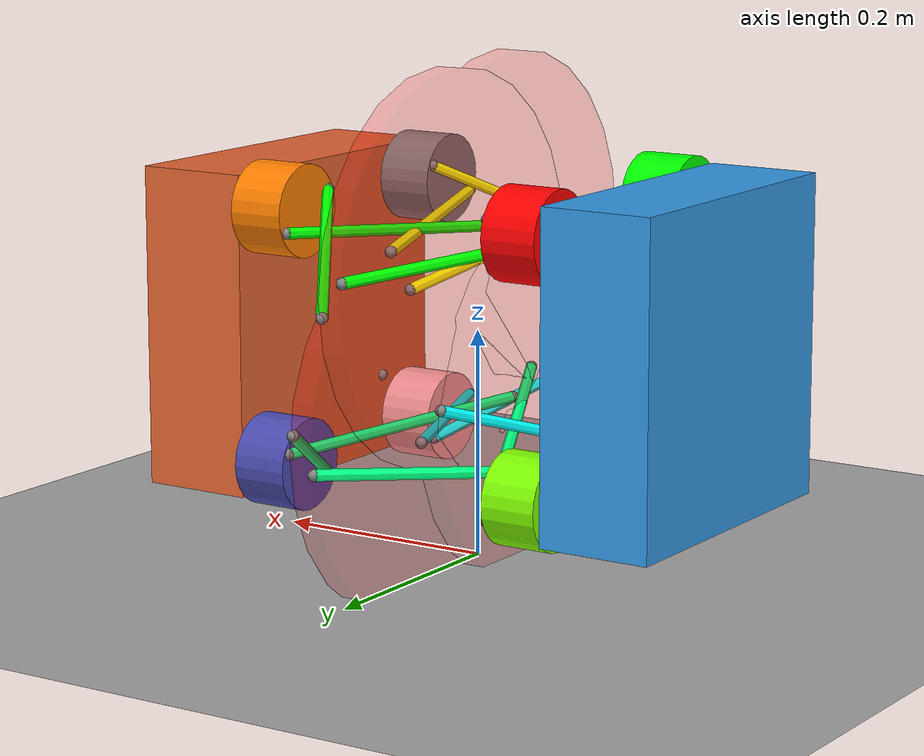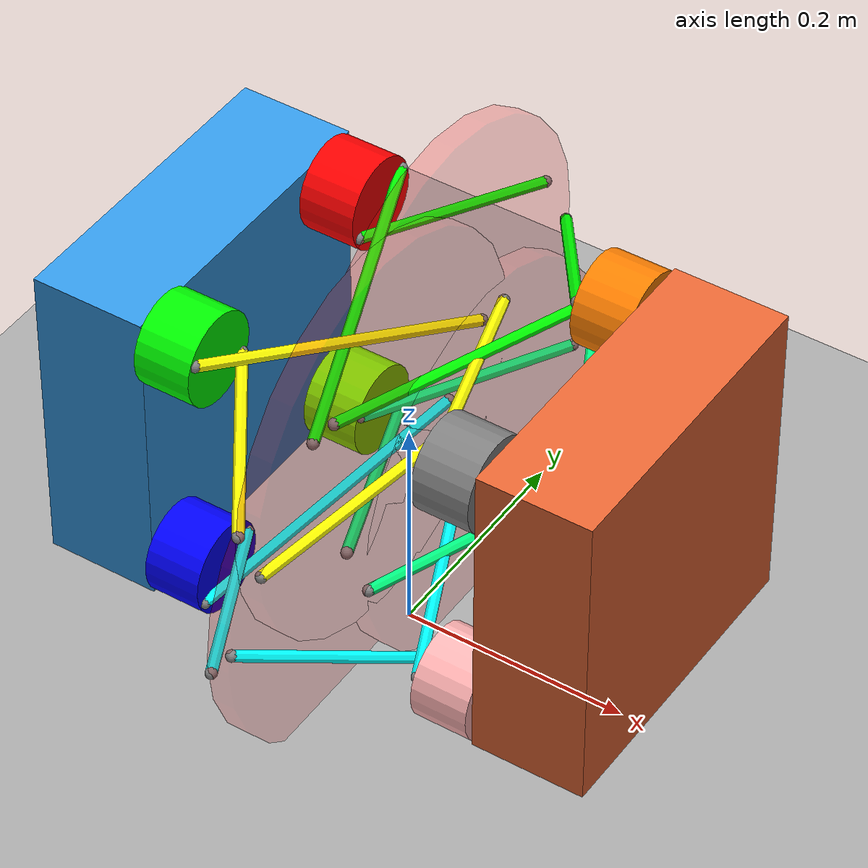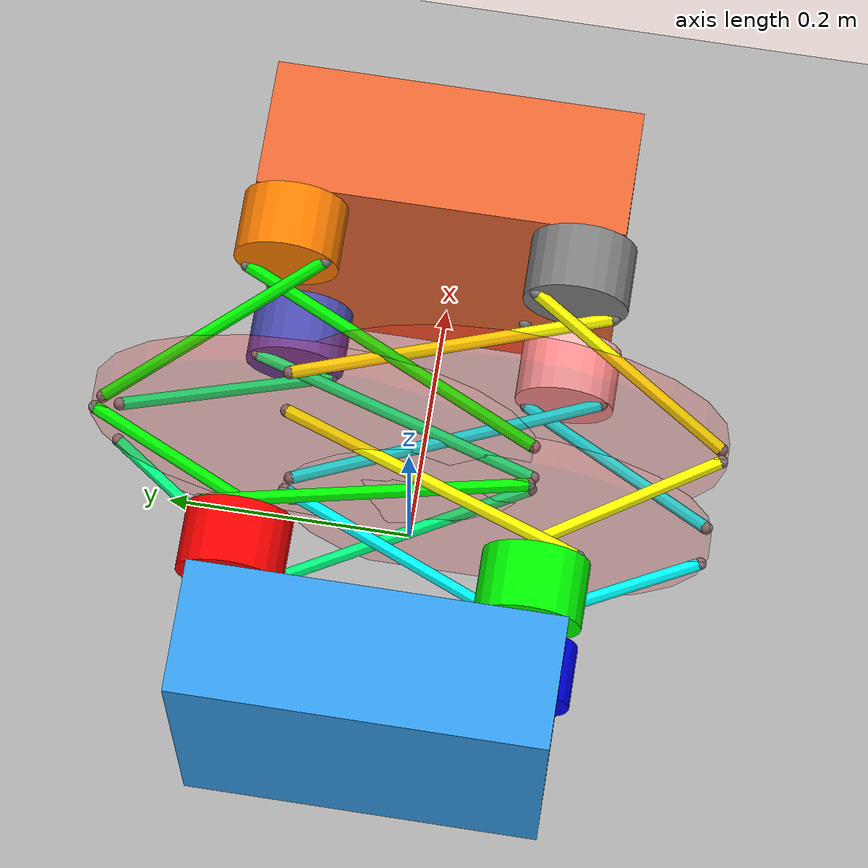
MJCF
<mujoco model="17mm">
  <option timestep="0.001"/>
  <size njmax="200" nconmax="100"/>

  <asset>
    <texture name="grid" type="2d" builtin="checker" width="300" height="300"
             rgb1="0.8 0.8 0.8" rgb2="0.5 0.5 0.5" mark="edge" markrgb="0.2 0.2 0.2"/>
    <material name="gridmat" texture="grid" texrepeat="5 5" reflectance="0.1"/>
  </asset>

  <worldbody>
    <geom name="floor" type="plane" size="5 5 0.1" material="gridmat" friction="0.2 0.02 0.01" contype="1" conaffinity="1"/>

    <!-- Block A -->
    <body name="block_a" pos="-0.2 0 0.2">
      <freejoint/>
      <geom type="box" size="0.05 0.14 0.14" density="480" friction="0.2 0.02 0.01" rgba="0.2 0.6 0.9 1"/>

      <!-- Cable 1 A -->
      <body name="spring_1a" pos="0.05 0.11 0.11">
        <joint name="spring1a_hinge" type="hinge" axis="1 0 0" limited="true" range="0 3.14"/>
        <geom type="cylinder" fromto="0 0 0 0.05 0 0" size="0.04" density="150" rgba="1 0 0 1"/>

        <site name="siteM1a1" pos="0.05 0.03 0.015"/>
        <site name="siteM1a2" pos="0.05 -0.03 -0.015"/>
      </body>

      <!-- Cable 1 B -->
      <body name="spring_1b" pos="0.175 0.07 0.065">
        <geom name="spring_1b_collision" type="cylinder" fromto="0 0 0 0.02 0 0" size="0.17" density="150" rgba="1 0 0 0.1" contype="4" conaffinity="0"/>
        <joint name="spring1b_hinge" type="hinge" axis="1 0 0"/>
        <site name="siteM1b1" pos="0 -0.165 -0.015"/>
        <site name="siteM1b2" pos="0 0.165 0.015"/>

        <site name="siteM1b3" pos="0.02 -0.165 0.015"/>
        <site name="siteM1b4" pos="0.02 0.165 -0.015"/>
      </body>

      <!-- Cable 2 C-->
      <body name="spring_2c" pos="0.05 -0.11 0.11">
        <geom type="cylinder" fromto="0 0 0 0.05 0 0" size="0.04" density="150" rgba="0 1 0 1"/>
        <joint name="spring2c_hinge" type="hinge" axis="1 0 0" limited="true" range="0 3.14"/>
        <site name="siteM2c1" pos="0.05 0.03 -0.015"/>
        <site name="siteM2c2" pos="0.05 -0.03 0.015"/>
      </body>

      <!-- Cable 3 A -->
      <body name="spring_3a" pos="0.05 -0.11 -0.11">
        <joint name="spring3a_hinge" type="hinge" axis="1 0 0" limited="true" range="0 3.14"/>
        <geom type="cylinder" fromto="0 0 0 0.05 0 0" size="0.04" density="150" rgba="0 0 1 1"/>

        <site name="siteM3a1" pos="0.05 0.03 0.015"/>
        <site name="siteM3a2" pos="0.05 -0.03 -0.015"/>

      </body>

      <!-- Cable 3 B-->
      <body name="spring_3b" pos="0.175 -0.07 -0.065">

        <geom name="spring_3b_collision" type="cylinder" fromto="0 0 0 0.02 0 0" size="0.17" density="150" rgba="1 0 0 0.1" contype="8" conaffinity="0"/>
        <joint name="spring3b_hinge" type="hinge" axis="1 0 0"/>
        <site name="siteM3b1" pos="0.0 -0.165 -0.015"/>
        <site name="siteM3b2" pos="0.0 0.165 0.015"/>

        <site name="siteM3b3" pos="0.02 -0.165 0.015"/>
        <site name="siteM3b4" pos="0.02 0.165 -0.015"/>
      </body>

      <!-- Cable 4 C-->
      <body name="spring_4c" pos="0.05 0.11 -0.11">
        <geom type="cylinder" fromto="0 0 0 0.05 0 0" size="0.04" density="150" rgba="0.5 1 0 1"/>
         <joint name="spring4c_hinge" type="hinge" axis="1 0 0" limited="true" range="0 3.14"/>
        <site name="siteM4c1" pos="0.05 0.03 -0.015"/>
        <site name="siteM4c2" pos="0.05 -0.03 0.015"/>
      </body>

    </body>

    <!-- Block B -->
    <body name="block_b" pos="0.2 0 0.2">
      <freejoint/>
      <geom type="box" size="0.05 0.14 0.14" density="480" friction="0.2 0.02 0.01" rgba="0.9 0.4 0.2 1"/>

      <site name="site3b" pos="-0.05 -0.07 -0.07"/>

      <!-- Cable 1 C-->
      <body name="spring_1c" pos="-0.05 0.11 0.11">
        <geom type="cylinder" fromto="0 0 0 -0.05 0 0" size="0.04" density="150" rgba="1 0.5 0 1"/>
        <joint name="spring1c_hinge" type="hinge" axis="1 0 0" limited="true" range="0 3.14"/>
        <site name="siteM1c1" pos="-0.05 0.03 -0.015"/>
        <site name="siteM1c2" pos="-0.05 -0.03 0.015"/>
      </body>

      <!-- Cable 3 C-->
      <body name="spring_3c" pos="-0.05 -0.11 -0.11">
        <geom type="cylinder" fromto="0 0 0 -0.05 0 0" size="0.04" density="150" rgba="1 0.7 0.7 1"/>
        <joint name="spring3c_hinge" type="hinge" axis="1 0 0" limited="true" range="0 3.14"/>
        <site name="siteM3c1" pos="-0.05 0.03 -0.015"/>
        <site name="siteM3c2" pos="-0.05 -0.03 0.015"/>
      </body>

      <!-- Cable 2 A -->
      <body name="spring_2a" pos="-0.05 -0.11 0.11">
        <joint name="spring2a_hinge" type="hinge" axis="1 0 0" limited="true" range="0 3.14"/>
        <geom type="cylinder" fromto="0 0 0 -0.05 0 0" size="0.04" density="150"/>

        <site name="siteM2a1" pos="-0.05 0.03 0.015"/>
        <site name="siteM2a2" pos="-0.05 -0.03 -0.015"/>
      </body>
      <!-- Cable 2 B -->

      <body name="spring_2b" pos="-0.175 -0.07 0.065">
         <geom name="spring_2b_collision" type="cylinder" fromto="0 0 0 -0.02 0 0" size="0.17" density="150" rgba="1 0 0 0.1" contype="16" conaffinity="0"/>
        <joint name="spring2b_hinge" type="hinge" axis="1 0 0"/>
        <site name="siteM2b1" pos="0 -0.165 -0.015"/>
        <site name="siteM2b2" pos="0 0.165 0.015"/>

        <site name="siteM2b3" pos="-0.02 -0.165 0.015"/>
        <site name="siteM2b4" pos="-0.02 0.165 -0.015"/>
      </body>

      <!-- Cable 4 A -->
      <body name="spring_4a" pos="-0.05 0.11 -0.11">
        <joint name="spring4a_hinge" type="hinge" axis="1 0 0" limited="true" range="0 3.14" />
        <geom type="cylinder" fromto="0 0 0 -0.05 0 0" size="0.04" density="150" rgba="0.3 0.3 0.7 1"/>

        <site name="siteM4a1" pos="-0.05 0.03 0.015"/>
        <site name="siteM4a2" pos="-0.05 -0.03 -0.015"/>
      </body>

      <!-- Cable 4 B -->
      <body name="spring_4b" pos="-0.175 0.07 -0.065">
         <geom name="spring_4b_collision" type="cylinder" fromto="0 0 0 -0.02 0 0" size="0.17" density="150" rgba="1 0 0 0.1" contype="32" conaffinity="0"/>
        <joint name="spring4b_hinge" type="hinge" axis="1 0 0"/>
        <site name="siteM4b1" pos="0 -0.165 -0.015"/>
        <site name="siteM4b2" pos="0 0.165 0.015"/>

        <site name="siteM4b3" pos="-0.02 -0.165 0.015"/>
        <site name="siteM4b4" pos="-0.02 0.165 -0.015"/>
      </body>

    </body>
  </worldbody>

  <actuator>
    <position name="spring1a_motor" joint="spring1a_hinge" kp="10" ctrlrange="0 3.14"/>
    <position name="spring2a_motor" joint="spring2a_hinge" kp="10" ctrlrange="0 3.14"/>
    <position name="spring3a_motor" joint="spring3a_hinge" kp="10" ctrlrange="0 3.14"/>
    <position name="spring4a_motor" joint="spring4a_hinge" kp="10" ctrlrange="0 3.14"/>

    <position name="spring1c_motor" joint="spring1c_hinge" kp="10" ctrlrange="0 3.14"/>
    <position name="spring2c_motor" joint="spring2c_hinge" kp="10" ctrlrange="0 3.14"/>
    <position name="spring3c_motor" joint="spring3c_hinge" kp="10" ctrlrange="0 3.14"/>
    <position name="spring4c_motor" joint="spring4c_hinge" kp="10" ctrlrange="0 3.14"/>
  </actuator>

  <tendon>
    <spatial name="inter1a1" width="0.005" rgba="0 1 0 1" stiffness="5000" damping="25">
        <site site="siteM1a1"/>
        <site site="siteM1b1"/>
    </spatial>
    <spatial name="inter1a2" width="0.005" rgba="0 1 0 1" stiffness="5000" damping="25">
        <site site="siteM1a2"/>
        <site site="siteM1b2"/>
    </spatial>
      <spatial name="inter1b1" width="0.005" rgba="0 1 0 1" stiffness="5000" damping="25">
        <site site="siteM1b3"/>
        <site site="siteM1c1"/>
    </spatial>
        <spatial name="inter1b2" width="0.005" rgba="0 1 0 1" stiffness="5000" damping="25">
        <site site="siteM1b4"/>
        <site site="siteM1c2"/>
    </spatial>

    <spatial name="inter2a1" width="0.005" rgba="1 1 0 1" stiffness="5000" damping="25">
        <site site="siteM2a1"/>
        <site site="siteM2b1"/>
    </spatial>
    <spatial name="inter2a2" width="0.005" rgba="1 1 0 1" stiffness="5000" damping="25">
        <site site="siteM2a2"/>
        <site site="siteM2b2"/>
    </spatial>
    <spatial name="inter2b1" width="0.005" rgba="1 1 0 1" stiffness="5000" damping="25">
        <site site="siteM2b3"/>
        <site site="siteM2c1"/>
    </spatial>
    <spatial name="inter2b2" width="0.005" rgba="1 1 0 1" stiffness="5000" damping="25">
        <site site="siteM2b4"/>
        <site site="siteM2c2"/>
    </spatial>

    <spatial name="inter3a1" width="0.005" rgba="0 1 1 1" stiffness="5000" damping="25">
        <site site="siteM3a1"/>
        <site site="siteM3b1"/>
    </spatial>
    <spatial name="inter3a2" width="0.005" rgba="0 1 1 1" stiffness="5000" damping="25">
        <site site="siteM3a2"/>
        <site site="siteM3b2"/>
    </spatial>
    <spatial name="inter3b1" width="0.005" rgba="0 1 1 1" stiffness="5000" damping="25">
        <site site="siteM3b3"/>
        <site site="siteM3c1"/>
    </spatial>
    <spatial name="inter3b2" width="0.005" rgba="0 1 1 1" stiffness="5000" damping="25">
        <site site="siteM3b4"/>
        <site site="siteM3c2"/>
    </spatial>

     <spatial name="inter4a1" width="0.005" rgba="0 1 0.5 1" stiffness="5000" damping="25">
        <site site="siteM4a1"/>
        <site site="siteM4b1"/>
    </spatial>
    <spatial name="inter4a2" width="0.005" rgba="0 1 0.5 1" stiffness="5000" damping="25">
        <site site="siteM4a2"/>
        <site site="siteM4b2"/>
    </spatial>
    <spatial name="inter4b1" width="0.005" rgba="0 1 0.5 1" stiffness="5000" damping="25">
        <site site="siteM4b3"/>
        <site site="siteM4c1"/>
    </spatial>
    <spatial name="inter4b2" width="0.005" rgba="0 1 0.5 1" stiffness="5000" damping="25">
        <site site="siteM4b4"/>
        <site site="siteM4c2"/>
    </spatial>

  </tendon>

</mujoco>
